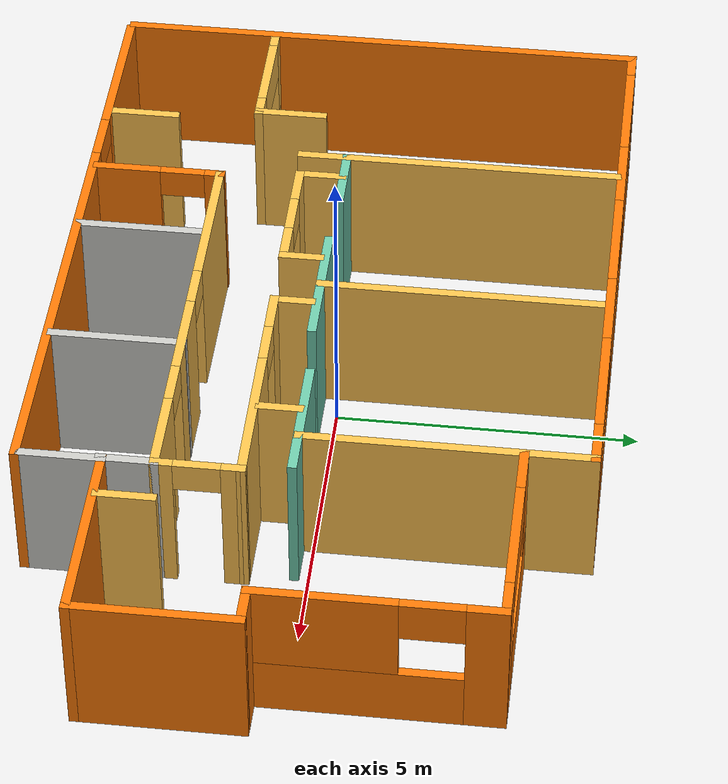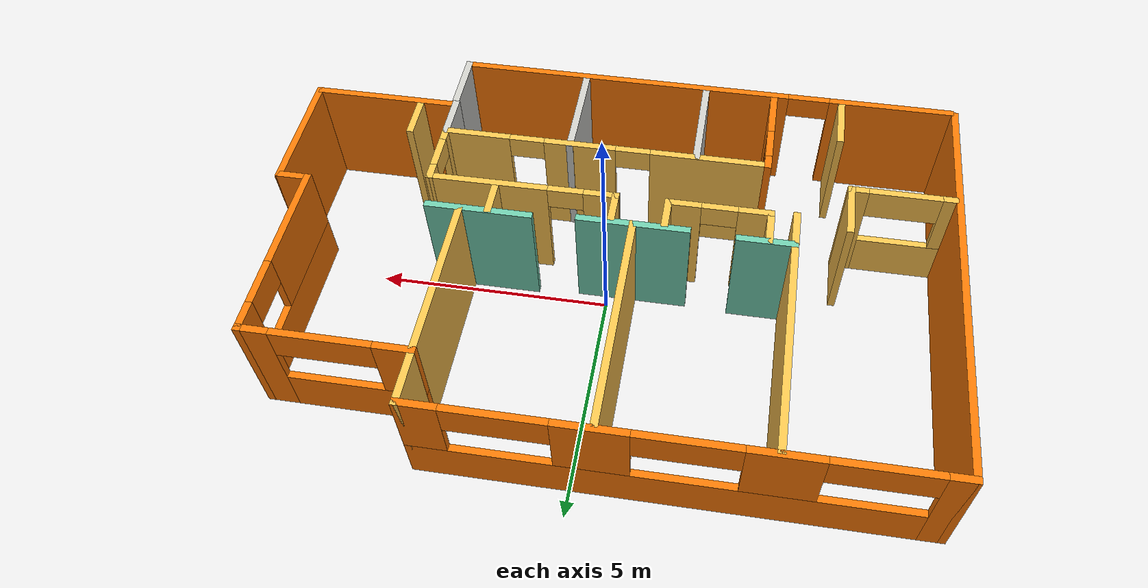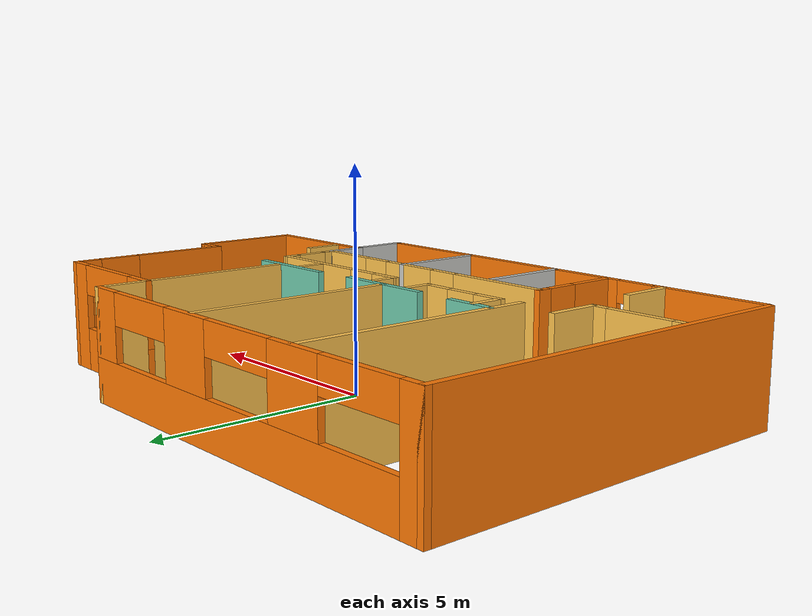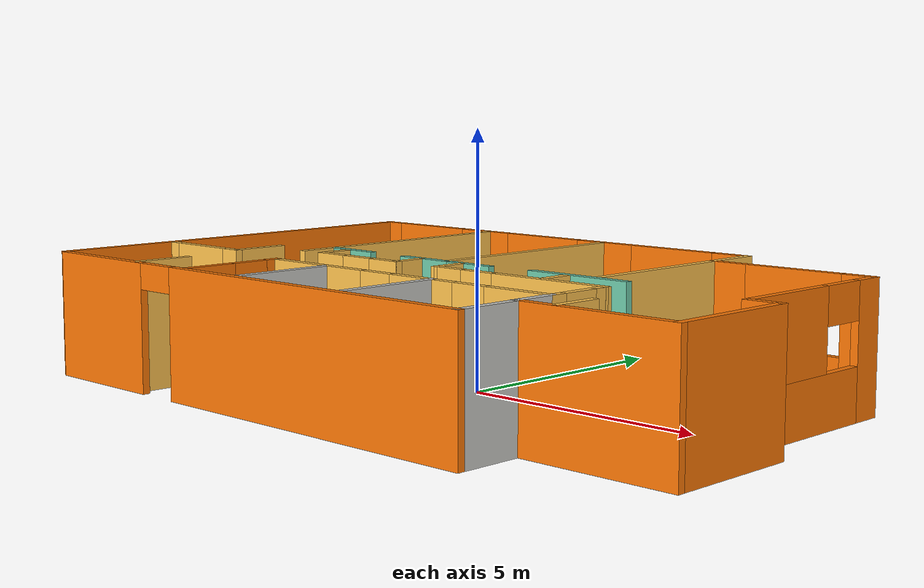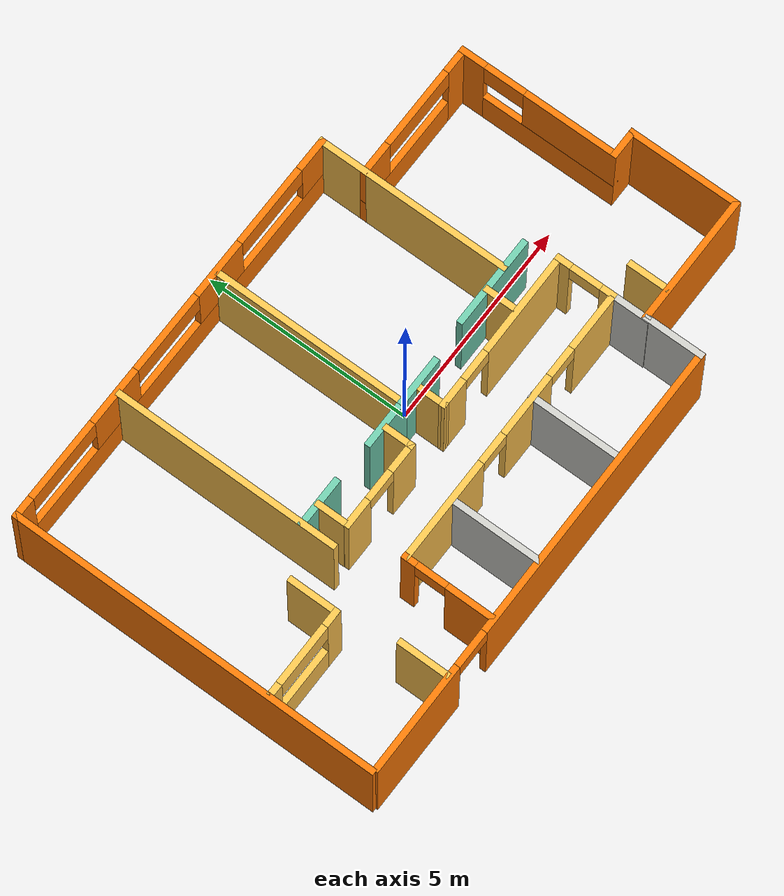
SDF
<?xml version='1.0'?>
<sdf version='1.6'>
  <model name='APT916'>
    <pose frame=''>-0.036 -0.065 0 0 -0 0</pose>
    <link name='Wall_14'>
      <collision name='Wall_14_Collision'>
        <geometry>
          <box>
            <size>9 0.15 2.5</size>
          </box>
        </geometry>
        <pose frame=''>0 0 1.25 0 -0 0</pose>
      </collision>
      <visual name='Wall_14_Visual'>
        <pose frame=''>0 0 1.25 0 -0 0</pose>
        <geometry>
          <box>
            <size>9 0.15 2.5</size>
          </box>
        </geometry>
        <material>
          <script>
            <uri>file://media/materials/scripts/gazebo.material</uri>
            <name>Gazebo/Grey</name>
          </script>
          <ambient>0.996078 0.47451 0.0196078 1</ambient>
        </material>
        <meta>
          <layer>0</layer>
        </meta>
      </visual>
      <pose frame=''>-7.025 0.025 0 0 0 -1.5708</pose>
    </link>
    <link name='Wall_16'>
      <collision name='Wall_16_Collision'>
        <geometry>
          <box>
            <size>5.5 0.15 2.5</size>
          </box>
        </geometry>
        <pose frame=''>0 0 1.25 0 -0 0</pose>
      </collision>
      <visual name='Wall_16_Visual'>
        <pose frame=''>0 0 1.25 0 -0 0</pose>
        <geometry>
          <box>
            <size>5.5 0.15 2.5</size>
          </box>
        </geometry>
        <material>
          <script>
            <uri>file://media/materials/scripts/gazebo.material</uri>
            <name>Gazebo/Grey</name>
          </script>
          <ambient>1 0.764706 0.305882 1</ambient>
        </material>
        <meta>
          <layer>0</layer>
        </meta>
      </visual>
      <pose frame=''>-3.747 1.703 0 0 0 -1.5708</pose>
    </link>
    <link name='Wall_18'>
      <collision name='Wall_18_Collision'>
        <geometry>
          <box>
            <size>1.25 0.15 2.5</size>
          </box>
        </geometry>
        <pose frame=''>0 0 1.25 0 -0 0</pose>
      </collision>
      <visual name='Wall_18_Visual'>
        <pose frame=''>0 0 1.25 0 -0 0</pose>
        <geometry>
          <box>
            <size>1.25 0.15 2.5</size>
          </box>
        </geometry>
        <material>
          <script>
            <uri>file://media/materials/scripts/gazebo.material</uri>
            <name>Gazebo/Grey</name>
          </script>
          <ambient>1 0.764706 0.305882 1</ambient>
        </material>
        <meta>
          <layer>0</layer>
        </meta>
      </visual>
      <pose frame=''>-4.824 -1.31 0 0 0 -1.5708</pose>
    </link>
    <link name='Wall_19'>
      <pose frame=''>-5.874 -1.86 0 0 -0 3.14159</pose>
      <visual name='Wall_19_Visual_0'>
        <pose frame=''>-0.90386 0 1.25 0 -0 0</pose>
        <geometry>
          <box>
            <size>0.442281 0.15 2.5</size>
          </box>
        </geometry>
        <material>
          <script>
            <uri>file://media/materials/scripts/gazebo.material</uri>
            <name>Gazebo/Grey</name>
          </script>
          <ambient>1 0.764706 0.305882 1</ambient>
        </material>
        <meta>
          <layer>0</layer>
        </meta>
      </visual>
      <collision name='Wall_19_Collision_0'>
        <geometry>
          <box>
            <size>0.442281 0.15 2.5</size>
          </box>
        </geometry>
        <pose frame=''>-0.90386 0 1.25 0 -0 0</pose>
      </collision>
      <visual name='Wall_19_Visual_1'>
        <pose frame=''>0.22114 0 0.5 0 -0 0</pose>
        <geometry>
          <box>
            <size>1.80772 0.15 1</size>
          </box>
        </geometry>
        <material>
          <script>
            <uri>file://media/materials/scripts/gazebo.material</uri>
            <name>Gazebo/Grey</name>
          </script>
          <ambient>1 0.764706 0.305882 1</ambient>
        </material>
        <meta>
          <layer>0</layer>
        </meta>
      </visual>
      <collision name='Wall_19_Collision_1'>
        <geometry>
          <box>
            <size>1.80772 0.15 1</size>
          </box>
        </geometry>
        <pose frame=''>0.22114 0 0.5 0 -0 0</pose>
      </collision>
      <visual name='Wall_19_Visual_2'>
        <pose frame=''>0.97114 0 1.75 0 -0 0</pose>
        <geometry>
          <box>
            <size>0.307719 0.15 1.5</size>
          </box>
        </geometry>
        <material>
          <script>
            <uri>file://media/materials/scripts/gazebo.material</uri>
            <name>Gazebo/Grey</name>
          </script>
          <ambient>1 0.764706 0.305882 1</ambient>
        </material>
        <meta>
          <layer>0</layer>
        </meta>
      </visual>
      <collision name='Wall_19_Collision_2'>
        <geometry>
          <box>
            <size>0.307719 0.15 1.5</size>
          </box>
        </geometry>
        <pose frame=''>0.97114 0 1.75 0 -0 0</pose>
      </collision>
      <visual name='Wall_19_Visual_3'>
        <pose frame=''>0.067281 0 2.15 0 -0 0</pose>
        <geometry>
          <box>
            <size>1.5 0.15 0.7</size>
          </box>
        </geometry>
        <material>
          <script>
            <uri>file://media/materials/scripts/gazebo.material</uri>
            <name>Gazebo/Grey</name>
          </script>
          <ambient>1 0.764706 0.305882 1</ambient>
        </material>
        <meta>
          <layer>0</layer>
        </meta>
      </visual>
      <collision name='Wall_19_Collision_3'>
        <geometry>
          <box>
            <size>1.5 0.15 0.7</size>
          </box>
        </geometry>
        <pose frame=''>0.067281 0 2.15 0 -0 0</pose>
      </collision>
    </link>
    <link name='Wall_21'>
      <collision name='Wall_21_Collision'>
        <geometry>
          <box>
            <size>4.75 0.15 2.5</size>
          </box>
        </geometry>
        <pose frame=''>0 0 1.25 0 -0 0</pose>
      </collision>
      <visual name='Wall_21_Visual'>
        <pose frame=''>0 0 1.25 0 -0 0</pose>
        <geometry>
          <box>
            <size>4.75 0.15 2.5</size>
          </box>
        </geometry>
        <material>
          <script>
            <uri>file://media/materials/scripts/gazebo.material</uri>
            <name>Gazebo/Grey</name>
          </script>
          <ambient>1 0.764706 0.305882 1</ambient>
        </material>
        <meta>
          <layer>0</layer>
        </meta>
      </visual>
      <pose frame=''>-0.486 2.047 0 0 0 -1.5708</pose>
    </link>
    <link name='Wall_23'>
      <collision name='Wall_23_Collision'>
        <geometry>
          <box>
            <size>1.25 0.15 2.5</size>
          </box>
        </geometry>
        <pose frame=''>0 0 1.25 0 -0 0</pose>
      </collision>
      <visual name='Wall_23_Visual'>
        <pose frame=''>0 0 1.25 0 -0 0</pose>
        <geometry>
          <box>
            <size>1.25 0.15 2.5</size>
          </box>
        </geometry>
        <material>
          <script>
            <uri>file://media/materials/scripts/gazebo.material</uri>
            <name>Gazebo/Grey</name>
          </script>
          <ambient>0.435294 0.796078 0.67451 1</ambient>
        </material>
        <meta>
          <layer>0</layer>
        </meta>
      </visual>
      <pose frame=''>-3.19 -0.206 0 0 -0 3.14159</pose>
    </link>
    <link name='Wall_3'>
      <pose frame=''>6.425 1.425 0 0 0 -1.5708</pose>
      <visual name='Wall_3_Visual_0'>
        <pose frame=''>-1.67037 0 1.25 0 -0 0</pose>
        <geometry>
          <box>
            <size>0.659259 0.15 2.5</size>
          </box>
        </geometry>
        <material>
          <script>
            <uri>file://media/materials/scripts/gazebo.material</uri>
            <name>Gazebo/Grey</name>
          </script>
          <ambient>0.996078 0.47451 0.0196078 1</ambient>
        </material>
        <meta>
          <layer>0</layer>
        </meta>
      </visual>
      <collision name='Wall_3_Collision_0'>
        <geometry>
          <box>
            <size>0.659259 0.15 2.5</size>
          </box>
        </geometry>
        <pose frame=''>-1.67037 0 1.25 0 -0 0</pose>
      </collision>
      <visual name='Wall_3_Visual_1'>
        <pose frame=''>0.329629 0 0.5 0 -0 0</pose>
        <geometry>
          <box>
            <size>3.34074 0.15 1</size>
          </box>
        </geometry>
        <material>
          <script>
            <uri>file://media/materials/scripts/gazebo.material</uri>
            <name>Gazebo/Grey</name>
          </script>
          <ambient>0.996078 0.47451 0.0196078 1</ambient>
        </material>
        <meta>
          <layer>0</layer>
        </meta>
      </visual>
      <collision name='Wall_3_Collision_1'>
        <geometry>
          <box>
            <size>3.34074 0.15 1</size>
          </box>
        </geometry>
        <pose frame=''>0.329629 0 0.5 0 -0 0</pose>
      </collision>
      <visual name='Wall_3_Visual_2'>
        <pose frame=''>0.829629 0 1.75 0 -0 0</pose>
        <geometry>
          <box>
            <size>2.34074 0.15 1.5</size>
          </box>
        </geometry>
        <material>
          <script>
            <uri>file://media/materials/scripts/gazebo.material</uri>
            <name>Gazebo/Grey</name>
          </script>
          <ambient>0.996078 0.47451 0.0196078 1</ambient>
        </material>
        <meta>
          <layer>0</layer>
        </meta>
      </visual>
      <collision name='Wall_3_Collision_2'>
        <geometry>
          <box>
            <size>2.34074 0.15 1.5</size>
          </box>
        </geometry>
        <pose frame=''>0.829629 0 1.75 0 -0 0</pose>
      </collision>
      <visual name='Wall_3_Visual_3'>
        <pose frame=''>-0.840741 0 2.15 0 -0 0</pose>
        <geometry>
          <box>
            <size>1 0.15 0.7</size>
          </box>
        </geometry>
        <material>
          <script>
            <uri>file://media/materials/scripts/gazebo.material</uri>
            <name>Gazebo/Grey</name>
          </script>
          <ambient>0.996078 0.47451 0.0196078 1</ambient>
        </material>
        <meta>
          <layer>0</layer>
        </meta>
      </visual>
      <collision name='Wall_3_Collision_3'>
        <geometry>
          <box>
            <size>1 0.15 0.7</size>
          </box>
        </geometry>
        <pose frame=''>-0.840741 0 2.15 0 -0 0</pose>
      </collision>
    </link>
    <link name='Wall_30'>
      <collision name='Wall_30_Collision'>
        <geometry>
          <box>
            <size>0.75 0.15 2.5</size>
          </box>
        </geometry>
        <pose frame=''>0 0 1.25 0 -0 0</pose>
      </collision>
      <visual name='Wall_30_Visual'>
        <pose frame=''>0 0 1.25 0 -0 0</pose>
        <geometry>
          <box>
            <size>0.75 0.15 2.5</size>
          </box>
        </geometry>
        <material>
          <script>
            <uri>file://media/materials/scripts/gazebo.material</uri>
            <name>Gazebo/Grey</name>
          </script>
          <ambient>1 0.764706 0.305882 1</ambient>
        </material>
        <meta>
          <layer>0</layer>
        </meta>
      </visual>
      <pose frame=''>-3.229 -0.53 0 0 -0 1.5708</pose>
    </link>
    <link name='Wall_32'>
      <pose frame=''>-2.171 -0.947 0 0 -0 3.14159</pose>
      <visual name='Wall_32_Visual_0'>
        <pose frame=''>-0.744745 0 1.25 0 -0 0</pose>
        <geometry>
          <box>
            <size>0.76051 0.15 2.5</size>
          </box>
        </geometry>
        <material>
          <script>
            <uri>file://media/materials/scripts/gazebo.material</uri>
            <name>Gazebo/Grey</name>
          </script>
          <ambient>1 0.764706 0.305882 1</ambient>
        </material>
        <meta>
          <layer>0</layer>
        </meta>
      </visual>
      <collision name='Wall_32_Collision_0'>
        <geometry>
          <box>
            <size>0.76051 0.15 2.5</size>
          </box>
        </geometry>
        <pose frame=''>-0.744745 0 1.25 0 -0 0</pose>
      </collision>
      <visual name='Wall_32_Visual_1'>
        <pose frame=''>0.755255 0 1.25 0 -0 0</pose>
        <geometry>
          <box>
            <size>0.73949 0.15 2.5</size>
          </box>
        </geometry>
        <material>
          <script>
            <uri>file://media/materials/scripts/gazebo.material</uri>
            <name>Gazebo/Grey</name>
          </script>
          <ambient>1 0.764706 0.305882 1</ambient>
        </material>
        <meta>
          <layer>0</layer>
        </meta>
      </visual>
      <collision name='Wall_32_Collision_1'>
        <geometry>
          <box>
            <size>0.73949 0.15 2.5</size>
          </box>
        </geometry>
        <pose frame=''>0.755255 0 1.25 0 -0 0</pose>
      </collision>
      <visual name='Wall_32_Visual_2'>
        <pose frame=''>0.01051 0 2.25 0 -0 0</pose>
        <geometry>
          <box>
            <size>0.75 0.15 0.5</size>
          </box>
        </geometry>
        <material>
          <script>
            <uri>file://media/materials/scripts/gazebo.material</uri>
            <name>Gazebo/Grey</name>
          </script>
          <ambient>1 0.764706 0.305882 1</ambient>
        </material>
        <meta>
          <layer>0</layer>
        </meta>
      </visual>
      <collision name='Wall_32_Collision_2'>
        <geometry>
          <box>
            <size>0.75 0.15 0.5</size>
          </box>
        </geometry>
        <pose frame=''>0.01051 0 2.25 0 -0 0</pose>
      </collision>
    </link>
    <link name='Wall_35'>
      <collision name='Wall_35_Collision'>
        <geometry>
          <box>
            <size>1.25 0.15 2.5</size>
          </box>
        </geometry>
        <pose frame=''>0 0 1.25 0 -0 0</pose>
      </collision>
      <visual name='Wall_35_Visual'>
        <pose frame=''>0 0 1.25 0 -0 0</pose>
        <geometry>
          <box>
            <size>1.25 0.15 2.5</size>
          </box>
        </geometry>
        <material>
          <script>
            <uri>file://media/materials/scripts/gazebo.material</uri>
            <name>Gazebo/Grey</name>
          </script>
          <ambient>0.435294 0.796078 0.67451 1</ambient>
        </material>
        <meta>
          <layer>0</layer>
        </meta>
      </visual>
      <pose frame=''>-1.036 -0.253 0 0 -0 3.14159</pose>
    </link>
    <link name='Wall_4'>
      <collision name='Wall_4_Collision'>
        <geometry>
          <box>
            <size>0.75 0.15 2.5</size>
          </box>
        </geometry>
        <pose frame=''>0 0 1.25 0 -0 0</pose>
      </collision>
      <visual name='Wall_4_Visual'>
        <pose frame=''>0 0 1.25 0 -0 0</pose>
        <geometry>
          <box>
            <size>0.75 0.15 2.5</size>
          </box>
        </geometry>
        <material>
          <script>
            <uri>file://media/materials/scripts/gazebo.material</uri>
            <name>Gazebo/Grey</name>
          </script>
          <ambient>0.996078 0.47451 0.0196078 1</ambient>
        </material>
        <meta>
          <layer>0</layer>
        </meta>
      </visual>
      <pose frame=''>6.725 -0.5 0 0 -0 0</pose>
    </link>
    <link name='Wall_42'>
      <collision name='Wall_42_Collision'>
        <geometry>
          <box>
            <size>1.25 0.15 2.5</size>
          </box>
        </geometry>
        <pose frame=''>0 0 1.25 0 -0 0</pose>
      </collision>
      <visual name='Wall_42_Visual'>
        <pose frame=''>0 0 1.25 0 -0 0</pose>
        <geometry>
          <box>
            <size>1.25 0.15 2.5</size>
          </box>
        </geometry>
        <material>
          <script>
            <uri>file://media/materials/scripts/gazebo.material</uri>
            <name>Gazebo/Grey</name>
          </script>
          <ambient>0.435294 0.796078 0.67451 1</ambient>
        </material>
        <meta>
          <layer>0</layer>
        </meta>
      </visual>
      <pose frame=''>0.064 -0.253 0 0 -0 3.14159</pose>
    </link>
    <link name='Wall_44'>
      <collision name='Wall_44_Collision'>
        <geometry>
          <box>
            <size>0.75 0.15 2.5</size>
          </box>
        </geometry>
        <pose frame=''>0 0 1.25 0 -0 0</pose>
      </collision>
      <visual name='Wall_44_Visual'>
        <pose frame=''>0 0 1.25 0 -0 0</pose>
        <geometry>
          <box>
            <size>0.75 0.15 2.5</size>
          </box>
        </geometry>
        <material>
          <script>
            <uri>file://media/materials/scripts/gazebo.material</uri>
            <name>Gazebo/Grey</name>
          </script>
          <ambient>1 0.764706 0.305882 1</ambient>
        </material>
        <meta>
          <layer>0</layer>
        </meta>
      </visual>
      <pose frame=''>-0.028 -0.652 0 0 0 -1.5708</pose>
    </link>
    <link name='Wall_5'>
      <collision name='Wall_5_Collision'>
        <geometry>
          <box>
            <size>2.75 0.15 2.5</size>
          </box>
        </geometry>
        <pose frame=''>0 0 1.25 0 -0 0</pose>
      </collision>
      <visual name='Wall_5_Visual'>
        <pose frame=''>0 0 1.25 0 -0 0</pose>
        <geometry>
          <box>
            <size>2.75 0.15 2.5</size>
          </box>
        </geometry>
        <material>
          <script>
            <uri>file://media/materials/scripts/gazebo.material</uri>
            <name>Gazebo/Grey</name>
          </script>
          <ambient>0.996078 0.47451 0.0196078 1</ambient>
        </material>
        <meta>
          <layer>0</layer>
        </meta>
      </visual>
      <pose frame=''>7.025 -1.8 0 0 0 -1.5708</pose>
    </link>
    <link name='Wall_51'>
      <collision name='Wall_51_Collision'>
        <geometry>
          <box>
            <size>2.25 0.15 2.5</size>
          </box>
        </geometry>
        <pose frame=''>0 0 1.25 0 -0 0</pose>
      </collision>
      <visual name='Wall_51_Visual'>
        <pose frame=''>0 0 1.25 0 -0 0</pose>
        <geometry>
          <box>
            <size>2.25 0.15 2.5</size>
          </box>
        </geometry>
        <material>
          <script>
            <uri>file://media/materials/scripts/gazebo.material</uri>
            <name>Gazebo/Grey</name>
          </script>
          <ambient>0.435294 0.796078 0.67451 1</ambient>
        </material>
        <meta>
          <layer>0</layer>
        </meta>
      </visual>
      <pose frame=''>2.684 -0.162 0 0 -0 0</pose>
    </link>
    <link name='Wall_53'>
      <pose frame=''>-1.975 4.45 0 0 -0 0</pose>
      <visual name='Wall_53_Visual_0'>
        <pose frame=''>-4.85383 0 1.25 0 -0 0</pose>
        <geometry>
          <box>
            <size>0.542348 0.15 2.5</size>
          </box>
        </geometry>
        <material>
          <script>
            <uri>file://media/materials/scripts/gazebo.material</uri>
            <name>Gazebo/Grey</name>
          </script>
          <ambient>0.996078 0.47451 0.0196078 1</ambient>
        </material>
        <meta>
          <layer>0</layer>
        </meta>
      </visual>
      <collision name='Wall_53_Collision_0'>
        <geometry>
          <box>
            <size>0.542348 0.15 2.5</size>
          </box>
        </geometry>
        <pose frame=''>-4.85383 0 1.25 0 -0 0</pose>
      </collision>
      <visual name='Wall_53_Visual_1'>
        <pose frame=''>0.271174 0 0.5 0 -0 0</pose>
        <geometry>
          <box>
            <size>9.70765 0.15 1</size>
          </box>
        </geometry>
        <material>
          <script>
            <uri>file://media/materials/scripts/gazebo.material</uri>
            <name>Gazebo/Grey</name>
          </script>
          <ambient>0.996078 0.47451 0.0196078 1</ambient>
        </material>
        <meta>
          <layer>0</layer>
        </meta>
      </visual>
      <collision name='Wall_53_Collision_1'>
        <geometry>
          <box>
            <size>9.70765 0.15 1</size>
          </box>
        </geometry>
        <pose frame=''>0.271174 0 0.5 0 -0 0</pose>
      </collision>
      <visual name='Wall_53_Visual_2'>
        <pose frame=''>-1.87284 0 1.75 0 -0 0</pose>
        <geometry>
          <box>
            <size>1.41962 0.15 1.5</size>
          </box>
        </geometry>
        <material>
          <script>
            <uri>file://media/materials/scripts/gazebo.material</uri>
            <name>Gazebo/Grey</name>
          </script>
          <ambient>0.996078 0.47451 0.0196078 1</ambient>
        </material>
        <meta>
          <layer>0</layer>
        </meta>
      </visual>
      <collision name='Wall_53_Collision_2'>
        <geometry>
          <box>
            <size>1.41962 0.15 1.5</size>
          </box>
        </geometry>
        <pose frame=''>-1.87284 0 1.75 0 -0 0</pose>
      </collision>
      <visual name='Wall_53_Visual_3'>
        <pose frame=''>1.55835 0 1.75 0 -0 0</pose>
        <geometry>
          <box>
            <size>1.44277 0.15 1.5</size>
          </box>
        </geometry>
        <material>
          <script>
            <uri>file://media/materials/scripts/gazebo.material</uri>
            <name>Gazebo/Grey</name>
          </script>
          <ambient>0.996078 0.47451 0.0196078 1</ambient>
        </material>
        <meta>
          <layer>0</layer>
        </meta>
      </visual>
      <collision name='Wall_53_Collision_3'>
        <geometry>
          <box>
            <size>1.44277 0.15 1.5</size>
          </box>
        </geometry>
        <pose frame=''>1.55835 0 1.75 0 -0 0</pose>
      </collision>
      <visual name='Wall_53_Visual_4'>
        <pose frame=''>4.70237 0 1.75 0 -0 0</pose>
        <geometry>
          <box>
            <size>0.845266 0.15 1.5</size>
          </box>
        </geometry>
        <material>
          <script>
            <uri>file://media/materials/scripts/gazebo.material</uri>
            <name>Gazebo/Grey</name>
          </script>
          <ambient>0.996078 0.47451 0.0196078 1</ambient>
        </material>
        <meta>
          <layer>0</layer>
        </meta>
      </visual>
      <collision name='Wall_53_Collision_4'>
        <geometry>
          <box>
            <size>0.845266 0.15 1.5</size>
          </box>
        </geometry>
        <pose frame=''>4.70237 0 1.75 0 -0 0</pose>
      </collision>
      <visual name='Wall_53_Visual_5'>
        <pose frame=''>-3.58265 0 2.15 0 -0 0</pose>
        <geometry>
          <box>
            <size>2 0.15 0.7</size>
          </box>
        </geometry>
        <material>
          <script>
            <uri>file://media/materials/scripts/gazebo.material</uri>
            <name>Gazebo/Grey</name>
          </script>
          <ambient>0.996078 0.47451 0.0196078 1</ambient>
        </material>
        <meta>
          <layer>0</layer>
        </meta>
      </visual>
      <collision name='Wall_53_Collision_5'>
        <geometry>
          <box>
            <size>2 0.15 0.7</size>
          </box>
        </geometry>
        <pose frame=''>-3.58265 0 2.15 0 -0 0</pose>
      </collision>
      <visual name='Wall_53_Visual_6'>
        <pose frame=''>-0.163033 0 2.15 0 -0 0</pose>
        <geometry>
          <box>
            <size>2 0.15 0.7</size>
          </box>
        </geometry>
        <material>
          <script>
            <uri>file://media/materials/scripts/gazebo.material</uri>
            <name>Gazebo/Grey</name>
          </script>
          <ambient>0.996078 0.47451 0.0196078 1</ambient>
        </material>
        <meta>
          <layer>0</layer>
        </meta>
      </visual>
      <collision name='Wall_53_Collision_6'>
        <geometry>
          <box>
            <size>2 0.15 0.7</size>
          </box>
        </geometry>
        <pose frame=''>-0.163033 0 2.15 0 -0 0</pose>
      </collision>
      <visual name='Wall_53_Visual_7'>
        <pose frame=''>3.27973 0 2.15 0 -0 0</pose>
        <geometry>
          <box>
            <size>2 0.15 0.7</size>
          </box>
        </geometry>
        <material>
          <script>
            <uri>file://media/materials/scripts/gazebo.material</uri>
            <name>Gazebo/Grey</name>
          </script>
          <ambient>0.996078 0.47451 0.0196078 1</ambient>
        </material>
        <meta>
          <layer>0</layer>
        </meta>
      </visual>
      <collision name='Wall_53_Collision_7'>
        <geometry>
          <box>
            <size>2 0.15 0.7</size>
          </box>
        </geometry>
        <pose frame=''>3.27973 0 2.15 0 -0 0</pose>
      </collision>
    </link>
    <link name='Wall_54'>
      <collision name='Wall_54_Collision'>
        <geometry>
          <box>
            <size>4.75 0.15 2.5</size>
          </box>
        </geometry>
        <pose frame=''>0 0 1.25 0 -0 0</pose>
      </collision>
      <visual name='Wall_54_Visual'>
        <pose frame=''>0 0 1.25 0 -0 0</pose>
        <geometry>
          <box>
            <size>4.75 0.15 2.5</size>
          </box>
        </geometry>
        <material>
          <script>
            <uri>file://media/materials/scripts/gazebo.material</uri>
            <name>Gazebo/Grey</name>
          </script>
          <ambient>1 0.764706 0.305882 1</ambient>
        </material>
        <meta>
          <layer>0</layer>
        </meta>
      </visual>
      <pose frame=''>3.075 2.15 0 0 0 -1.5708</pose>
    </link>
    <link name='Wall_56'>
      <pose frame=''>4.75 3.35 0 0 -0 3.14159</pose>
      <visual name='Wall_56_Visual_0'>
        <pose frame=''>-1.41677 0 1.25 0 -0 0</pose>
        <geometry>
          <box>
            <size>0.666459 0.15 2.5</size>
          </box>
        </geometry>
        <material>
          <script>
            <uri>file://media/materials/scripts/gazebo.material</uri>
            <name>Gazebo/Grey</name>
          </script>
          <ambient>0.996078 0.47451 0.0196078 1</ambient>
        </material>
        <meta>
          <layer>0</layer>
        </meta>
      </visual>
      <collision name='Wall_56_Collision_0'>
        <geometry>
          <box>
            <size>0.666459 0.15 2.5</size>
          </box>
        </geometry>
        <pose frame=''>-1.41677 0 1.25 0 -0 0</pose>
      </collision>
      <visual name='Wall_56_Visual_1'>
        <pose frame=''>0.333229 0 0.5 0 -0 0</pose>
        <geometry>
          <box>
            <size>2.83354 0.15 1</size>
          </box>
        </geometry>
        <material>
          <script>
            <uri>file://media/materials/scripts/gazebo.material</uri>
            <name>Gazebo/Grey</name>
          </script>
          <ambient>0.996078 0.47451 0.0196078 1</ambient>
        </material>
        <meta>
          <layer>0</layer>
        </meta>
      </visual>
      <collision name='Wall_56_Collision_1'>
        <geometry>
          <box>
            <size>2.83354 0.15 1</size>
          </box>
        </geometry>
        <pose frame=''>0.333229 0 0.5 0 -0 0</pose>
      </collision>
      <visual name='Wall_56_Visual_2'>
        <pose frame=''>1.33323 0 1.75 0 -0 0</pose>
        <geometry>
          <box>
            <size>0.833541 0.15 1.5</size>
          </box>
        </geometry>
        <material>
          <script>
            <uri>file://media/materials/scripts/gazebo.material</uri>
            <name>Gazebo/Grey</name>
          </script>
          <ambient>0.996078 0.47451 0.0196078 1</ambient>
        </material>
        <meta>
          <layer>0</layer>
        </meta>
      </visual>
      <collision name='Wall_56_Collision_2'>
        <geometry>
          <box>
            <size>0.833541 0.15 1.5</size>
          </box>
        </geometry>
        <pose frame=''>1.33323 0 1.75 0 -0 0</pose>
      </collision>
      <visual name='Wall_56_Visual_3'>
        <pose frame=''>-0.083541 0 2.15 0 -0 0</pose>
        <geometry>
          <box>
            <size>2 0.15 0.7</size>
          </box>
        </geometry>
        <material>
          <script>
            <uri>file://media/materials/scripts/gazebo.material</uri>
            <name>Gazebo/Grey</name>
          </script>
          <ambient>0.996078 0.47451 0.0196078 1</ambient>
        </material>
        <meta>
          <layer>0</layer>
        </meta>
      </visual>
      <collision name='Wall_56_Collision_3'>
        <geometry>
          <box>
            <size>2 0.15 0.7</size>
          </box>
        </geometry>
        <pose frame=''>-0.083541 0 2.15 0 -0 0</pose>
      </collision>
    </link>
    <link name='Wall_58'>
      <collision name='Wall_58_Collision'>
        <geometry>
          <box>
            <size>0.8 0.15 2.5</size>
          </box>
        </geometry>
        <pose frame=''>0 0 1.25 0 -0 0</pose>
      </collision>
      <visual name='Wall_58_Visual'>
        <pose frame=''>0 0 1.25 0 -0 0</pose>
        <geometry>
          <box>
            <size>0.8 0.15 2.5</size>
          </box>
        </geometry>
        <material>
          <script>
            <uri>file://media/materials/scripts/gazebo.material</uri>
            <name>Gazebo/Grey</name>
          </script>
          <ambient>1 0.764706 0.305882 1</ambient>
        </material>
        <meta>
          <layer>0</layer>
        </meta>
      </visual>
      <pose frame=''>2.486 -0.51 0 0 0 -1.5708</pose>
    </link>
    <link name='Wall_6'>
      <collision name='Wall_6_Collision'>
        <geometry>
          <box>
            <size>3.25 0.15 2.5</size>
          </box>
        </geometry>
        <pose frame=''>0 0 1.25 0 -0 0</pose>
      </collision>
      <visual name='Wall_6_Visual'>
        <pose frame=''>0 0 1.25 0 -0 0</pose>
        <geometry>
          <box>
            <size>3.25 0.15 2.5</size>
          </box>
        </geometry>
        <material>
          <script>
            <uri>file://media/materials/scripts/gazebo.material</uri>
            <name>Gazebo/Grey</name>
          </script>
          <ambient>0.996078 0.47451 0.0196078 1</ambient>
        </material>
        <meta>
          <layer>0</layer>
        </meta>
      </visual>
      <pose frame=''>5.475 -3.1 0 0 -0 3.14159</pose>
    </link>
    <link name='Wall_60'>
      <collision name='Wall_60_Collision'>
        <geometry>
          <box>
            <size>1.25 0.15 2.5</size>
          </box>
        </geometry>
        <pose frame=''>0 0 1.25 0 -0 0</pose>
      </collision>
      <visual name='Wall_60_Visual'>
        <pose frame=''>0 0 1.25 0 -0 0</pose>
        <geometry>
          <box>
            <size>1.25 0.15 2.5</size>
          </box>
        </geometry>
        <material>
          <script>
            <uri>file://media/materials/scripts/gazebo.material</uri>
            <name>Gazebo/Grey</name>
          </script>
          <ambient>1 0.764706 0.305882 1</ambient>
        </material>
        <meta>
          <layer>0</layer>
        </meta>
      </visual>
      <pose frame=''>-4.563 -3.832 0 0 -0 1.5708</pose>
    </link>
    <link name='Wall_63'>
      <pose frame=''>0.371 -2.285 0 0 -0 0</pose>
      <visual name='Wall_63_Visual_0'>
        <pose frame=''>-2.21806 0 1.25 0 -0 0</pose>
        <geometry>
          <box>
            <size>2.56389 0.15 2.5</size>
          </box>
        </geometry>
        <material>
          <script>
            <uri>file://media/materials/scripts/gazebo.material</uri>
            <name>Gazebo/Grey</name>
          </script>
          <ambient>1 0.764706 0.305882 1</ambient>
        </material>
        <meta>
          <layer>0</layer>
        </meta>
      </visual>
      <collision name='Wall_63_Collision_0'>
        <geometry>
          <box>
            <size>2.56389 0.15 2.5</size>
          </box>
        </geometry>
        <pose frame=''>-2.21806 0 1.25 0 -0 0</pose>
      </collision>
      <visual name='Wall_63_Visual_1'>
        <pose frame=''>0.590236 0 1.25 0 -0 0</pose>
        <geometry>
          <box>
            <size>1.5527 0.15 2.5</size>
          </box>
        </geometry>
        <material>
          <script>
            <uri>file://media/materials/scripts/gazebo.material</uri>
            <name>Gazebo/Grey</name>
          </script>
          <ambient>1 0.764706 0.305882 1</ambient>
        </material>
        <meta>
          <layer>0</layer>
        </meta>
      </visual>
      <collision name='Wall_63_Collision_1'>
        <geometry>
          <box>
            <size>1.5527 0.15 2.5</size>
          </box>
        </geometry>
        <pose frame=''>0.590236 0 1.25 0 -0 0</pose>
      </collision>
      <visual name='Wall_63_Visual_2'>
        <pose frame=''>2.80829 0 1.25 0 -0 0</pose>
        <geometry>
          <box>
            <size>1.38342 0.15 2.5</size>
          </box>
        </geometry>
        <material>
          <script>
            <uri>file://media/materials/scripts/gazebo.material</uri>
            <name>Gazebo/Grey</name>
          </script>
          <ambient>1 0.764706 0.305882 1</ambient>
        </material>
        <meta>
          <layer>0</layer>
        </meta>
      </visual>
      <collision name='Wall_63_Collision_2'>
        <geometry>
          <box>
            <size>1.38342 0.15 2.5</size>
          </box>
        </geometry>
        <pose frame=''>2.80829 0 1.25 0 -0 0</pose>
      </collision>
      <visual name='Wall_63_Visual_3'>
        <pose frame=''>-0.561112 0 2.25 0 -0 0</pose>
        <geometry>
          <box>
            <size>0.75 0.15 0.5</size>
          </box>
        </geometry>
        <material>
          <script>
            <uri>file://media/materials/scripts/gazebo.material</uri>
            <name>Gazebo/Grey</name>
          </script>
          <ambient>1 0.764706 0.305882 1</ambient>
        </material>
        <meta>
          <layer>0</layer>
        </meta>
      </visual>
      <collision name='Wall_63_Collision_3'>
        <geometry>
          <box>
            <size>0.75 0.15 0.5</size>
          </box>
        </geometry>
        <pose frame=''>-0.561112 0 2.25 0 -0 0</pose>
      </collision>
      <visual name='Wall_63_Visual_4'>
        <pose frame=''>1.74158 0 2.25 0 -0 0</pose>
        <geometry>
          <box>
            <size>0.75 0.15 0.5</size>
          </box>
        </geometry>
        <material>
          <script>
            <uri>file://media/materials/scripts/gazebo.material</uri>
            <name>Gazebo/Grey</name>
          </script>
          <ambient>1 0.764706 0.305882 1</ambient>
        </material>
        <meta>
          <layer>0</layer>
        </meta>
      </visual>
      <collision name='Wall_63_Collision_4'>
        <geometry>
          <box>
            <size>0.75 0.15 0.5</size>
          </box>
        </geometry>
        <pose frame=''>1.74158 0 2.25 0 -0 0</pose>
      </collision>
    </link>
    <link name='Wall_66'>
      <pose frame=''>-3.07 -3.324 0 0 -0 1.5708</pose>
      <visual name='Wall_66_Visual_0'>
        <pose frame=''>-0.549177 0 1.25 0 -0 0</pose>
        <geometry>
          <box>
            <size>1.15165 0.15 2.5</size>
          </box>
        </geometry>
        <material>
          <script>
            <uri>file://media/materials/scripts/gazebo.material</uri>
            <name>Gazebo/Grey</name>
          </script>
          <ambient>0.996078 0.47451 0.0196078 1</ambient>
        </material>
        <meta>
          <layer>0</layer>
        </meta>
      </visual>
      <collision name='Wall_66_Collision_0'>
        <geometry>
          <box>
            <size>1.15165 0.15 2.5</size>
          </box>
        </geometry>
        <pose frame=''>-0.549177 0 1.25 0 -0 0</pose>
      </collision>
      <visual name='Wall_66_Visual_1'>
        <pose frame=''>0.950823 0 1.25 0 -0 0</pose>
        <geometry>
          <box>
            <size>0.348354 0.15 2.5</size>
          </box>
        </geometry>
        <material>
          <script>
            <uri>file://media/materials/scripts/gazebo.material</uri>
            <name>Gazebo/Grey</name>
          </script>
          <ambient>0.996078 0.47451 0.0196078 1</ambient>
        </material>
        <meta>
          <layer>0</layer>
        </meta>
      </visual>
      <collision name='Wall_66_Collision_1'>
        <geometry>
          <box>
            <size>0.348354 0.15 2.5</size>
          </box>
        </geometry>
        <pose frame=''>0.950823 0 1.25 0 -0 0</pose>
      </collision>
      <visual name='Wall_66_Visual_2'>
        <pose frame=''>0.401646 0 2.25 0 -0 0</pose>
        <geometry>
          <box>
            <size>0.75 0.15 0.5</size>
          </box>
        </geometry>
        <material>
          <script>
            <uri>file://media/materials/scripts/gazebo.material</uri>
            <name>Gazebo/Grey</name>
          </script>
          <ambient>0.996078 0.47451 0.0196078 1</ambient>
        </material>
        <meta>
          <layer>0</layer>
        </meta>
      </visual>
      <collision name='Wall_66_Collision_2'>
        <geometry>
          <box>
            <size>0.75 0.15 0.5</size>
          </box>
        </geometry>
        <pose frame=''>0.401646 0 2.25 0 -0 0</pose>
      </collision>
    </link>
    <link name='Wall_68'>
      <collision name='Wall_68_Collision'>
        <geometry>
          <box>
            <size>1 0.15 2.5</size>
          </box>
        </geometry>
        <pose frame=''>0 0 1.25 0 -0 0</pose>
      </collision>
      <visual name='Wall_68_Visual'>
        <pose frame=''>0 0 1.25 0 -0 0</pose>
        <geometry>
          <box>
            <size>1 0.15 2.5</size>
          </box>
        </geometry>
        <material>
          <script>
            <uri>file://media/materials/scripts/gazebo.material</uri>
            <name>Gazebo/Grey</name>
          </script>
          <ambient>1 0.764706 0.305882 1</ambient>
        </material>
        <meta>
          <layer>0</layer>
        </meta>
      </visual>
      <pose frame=''>4.676 -2.615 0 0 0 -1.5708</pose>
    </link>
    <link name='Wall_7'>
      <collision name='Wall_7_Collision'>
        <geometry>
          <box>
            <size>1.5 0.15 2.5</size>
          </box>
        </geometry>
        <pose frame=''>0 0 1.25 0 -0 0</pose>
      </collision>
      <visual name='Wall_7_Visual'>
        <pose frame=''>0 0 1.25 0 -0 0</pose>
        <geometry>
          <box>
            <size>1.5 0.15 2.5</size>
          </box>
        </geometry>
        <material>
          <script>
            <uri>file://media/materials/scripts/gazebo.material</uri>
            <name>Gazebo/CeilingTiled</name>
          </script>
          <ambient>1 1 1 1</ambient>
        </material>
        <meta>
          <layer>0</layer>
        </meta>
      </visual>
      <pose frame=''>3.925 -3.775 0 0 0 -1.5708</pose>
    </link>
    <link name='Wall_71'>
      <collision name='Wall_71_Collision'>
        <geometry>
          <box>
            <size>1 0.15 2.5</size>
          </box>
        </geometry>
        <pose frame=''>0 0 1.25 0 -0 0</pose>
      </collision>
      <visual name='Wall_71_Visual'>
        <pose frame=''>0 0 1.25 0 -0 0</pose>
        <geometry>
          <box>
            <size>1 0.15 2.5</size>
          </box>
        </geometry>
        <material>
          <script>
            <uri>file://media/materials/scripts/gazebo.material</uri>
            <name>Gazebo/CeilingTiled</name>
          </script>
          <ambient>1 1 1 1</ambient>
        </material>
        <meta>
          <layer>0</layer>
        </meta>
      </visual>
      <pose frame=''>3.906 -2.705 0 0 0 -1.5708</pose>
    </link>
    <link name='Wall_73'>
      <collision name='Wall_73_Collision'>
        <geometry>
          <box>
            <size>0.75 0.15 2.5</size>
          </box>
        </geometry>
        <pose frame=''>0 0 1.25 0 -0 0</pose>
      </collision>
      <visual name='Wall_73_Visual'>
        <pose frame=''>0 0 1.25 0 -0 0</pose>
        <geometry>
          <box>
            <size>0.75 0.15 2.5</size>
          </box>
        </geometry>
        <material>
          <script>
            <uri>file://media/materials/scripts/gazebo.material</uri>
            <name>Gazebo/Grey</name>
          </script>
          <ambient>1 0.764706 0.305882 1</ambient>
        </material>
        <meta>
          <layer>0</layer>
        </meta>
      </visual>
      <pose frame=''>-1.121 -0.647 0 0 -0 1.5708</pose>
    </link>
    <link name='Wall_77'>
      <pose frame=''>3.906 -1.605 0 0 -0 1.5708</pose>
      <visual name='Wall_77_Visual_0'>
        <pose frame=''>-0.570824 0 1.25 0 -0 0</pose>
        <geometry>
          <box>
            <size>0.358352 0.15 2.5</size>
          </box>
        </geometry>
        <material>
          <script>
            <uri>file://media/materials/scripts/gazebo.material</uri>
            <name>Gazebo/Grey</name>
          </script>
          <ambient>1 0.764706 0.305882 1</ambient>
        </material>
        <meta>
          <layer>0</layer>
        </meta>
      </visual>
      <collision name='Wall_77_Collision_0'>
        <geometry>
          <box>
            <size>0.358352 0.15 2.5</size>
          </box>
        </geometry>
        <pose frame=''>-0.570824 0 1.25 0 -0 0</pose>
      </collision>
      <visual name='Wall_77_Visual_1'>
        <pose frame=''>0.554176 0 1.25 0 -0 0</pose>
        <geometry>
          <box>
            <size>0.391648 0.15 2.5</size>
          </box>
        </geometry>
        <material>
          <script>
            <uri>file://media/materials/scripts/gazebo.material</uri>
            <name>Gazebo/Grey</name>
          </script>
          <ambient>1 0.764706 0.305882 1</ambient>
        </material>
        <meta>
          <layer>0</layer>
        </meta>
      </visual>
      <collision name='Wall_77_Collision_1'>
        <geometry>
          <box>
            <size>0.391648 0.15 2.5</size>
          </box>
        </geometry>
        <pose frame=''>0.554176 0 1.25 0 -0 0</pose>
      </collision>
      <visual name='Wall_77_Visual_2'>
        <pose frame=''>-0.016648 0 2.25 0 -0 0</pose>
        <geometry>
          <box>
            <size>0.75 0.15 0.5</size>
          </box>
        </geometry>
        <material>
          <script>
            <uri>file://media/materials/scripts/gazebo.material</uri>
            <name>Gazebo/Grey</name>
          </script>
          <ambient>1 0.764706 0.305882 1</ambient>
        </material>
        <meta>
          <layer>0</layer>
        </meta>
      </visual>
      <collision name='Wall_77_Collision_2'>
        <geometry>
          <box>
            <size>0.75 0.15 0.5</size>
          </box>
        </geometry>
        <pose frame=''>-0.016648 0 2.25 0 -0 0</pose>
      </collision>
    </link>
    <link name='Wall_78'>
      <pose frame=''>1.939 -0.941 0 0 0 -3.136</pose>
      <visual name='Wall_78_Visual_0'>
        <pose frame=''>-0.750321 0 1.25 0 -0 0</pose>
        <geometry>
          <box>
            <size>2.58332 0.15 2.5</size>
          </box>
        </geometry>
        <material>
          <script>
            <uri>file://media/materials/scripts/gazebo.material</uri>
            <name>Gazebo/Grey</name>
          </script>
          <ambient>1 0.764706 0.305882 1</ambient>
        </material>
        <meta>
          <layer>0</layer>
        </meta>
      </visual>
      <collision name='Wall_78_Collision_0'>
        <geometry>
          <box>
            <size>2.58332 0.15 2.5</size>
          </box>
        </geometry>
        <pose frame=''>-0.750321 0 1.25 0 -0 0</pose>
      </collision>
      <visual name='Wall_78_Visual_1'>
        <pose frame=''>1.66666 0 1.25 0 -0 0</pose>
        <geometry>
          <box>
            <size>0.750642 0.15 2.5</size>
          </box>
        </geometry>
        <material>
          <script>
            <uri>file://media/materials/scripts/gazebo.material</uri>
            <name>Gazebo/Grey</name>
          </script>
          <ambient>1 0.764706 0.305882 1</ambient>
        </material>
        <meta>
          <layer>0</layer>
        </meta>
      </visual>
      <collision name='Wall_78_Collision_1'>
        <geometry>
          <box>
            <size>0.750642 0.15 2.5</size>
          </box>
        </geometry>
        <pose frame=''>1.66666 0 1.25 0 -0 0</pose>
      </collision>
      <visual name='Wall_78_Visual_2'>
        <pose frame=''>0.91634 0 2.25 0 -0 0</pose>
        <geometry>
          <box>
            <size>0.75 0.15 0.5</size>
          </box>
        </geometry>
        <material>
          <script>
            <uri>file://media/materials/scripts/gazebo.material</uri>
            <name>Gazebo/Grey</name>
          </script>
          <ambient>1 0.764706 0.305882 1</ambient>
        </material>
        <meta>
          <layer>0</layer>
        </meta>
      </visual>
      <collision name='Wall_78_Collision_2'>
        <geometry>
          <box>
            <size>0.75 0.15 0.5</size>
          </box>
        </geometry>
        <pose frame=''>0.91634 0 2.25 0 -0 0</pose>
      </collision>
    </link>
    <link name='Wall_8'>
      <pose frame=''>-1.5 -4.45 0 0 -0 3.14159</pose>
      <visual name='Wall_8_Visual_0'>
        <pose frame=''>-1.80553 0 1.25 0 -0 0</pose>
        <geometry>
          <box>
            <size>7.38895 0.15 2.5</size>
          </box>
        </geometry>
        <material>
          <script>
            <uri>file://media/materials/scripts/gazebo.material</uri>
            <name>Gazebo/Grey</name>
          </script>
          <ambient>0.996078 0.47451 0.0196078 1</ambient>
        </material>
        <meta>
          <layer>0</layer>
        </meta>
      </visual>
      <collision name='Wall_8_Collision_0'>
        <geometry>
          <box>
            <size>7.38895 0.15 2.5</size>
          </box>
        </geometry>
        <pose frame=''>-1.80553 0 1.25 0 -0 0</pose>
      </collision>
      <visual name='Wall_8_Visual_1'>
        <pose frame=''>4.14447 0 1.25 0 -0 0</pose>
        <geometry>
          <box>
            <size>2.71105 0.15 2.5</size>
          </box>
        </geometry>
        <material>
          <script>
            <uri>file://media/materials/scripts/gazebo.material</uri>
            <name>Gazebo/Grey</name>
          </script>
          <ambient>0.996078 0.47451 0.0196078 1</ambient>
        </material>
        <meta>
          <layer>0</layer>
        </meta>
      </visual>
      <collision name='Wall_8_Collision_1'>
        <geometry>
          <box>
            <size>2.71105 0.15 2.5</size>
          </box>
        </geometry>
        <pose frame=''>4.14447 0 1.25 0 -0 0</pose>
      </collision>
      <visual name='Wall_8_Visual_2'>
        <pose frame=''>2.33895 0 2.25 0 -0 0</pose>
        <geometry>
          <box>
            <size>0.9 0.15 0.5</size>
          </box>
        </geometry>
        <material>
          <script>
            <uri>file://media/materials/scripts/gazebo.material</uri>
            <name>Gazebo/Grey</name>
          </script>
          <ambient>0.996078 0.47451 0.0196078 1</ambient>
        </material>
        <meta>
          <layer>0</layer>
        </meta>
      </visual>
      <collision name='Wall_8_Collision_2'>
        <geometry>
          <box>
            <size>0.9 0.15 0.5</size>
          </box>
        </geometry>
        <pose frame=''>2.33895 0 2.25 0 -0 0</pose>
      </collision>
    </link>
    <link name='Wall_80'>
      <collision name='Wall_80_Collision'>
        <geometry>
          <box>
            <size>2.25 0.15 2.5</size>
          </box>
        </geometry>
        <pose frame=''>0 0 1.25 0 -0 0</pose>
      </collision>
      <visual name='Wall_80_Visual'>
        <pose frame=''>0 0 1.25 0 -0 0</pose>
        <geometry>
          <box>
            <size>2.25 0.15 2.5</size>
          </box>
        </geometry>
        <material>
          <script>
            <uri>file://media/materials/scripts/gazebo.material</uri>
            <name>Gazebo/CeilingTiled</name>
          </script>
          <ambient>1 1 1 1</ambient>
        </material>
        <meta>
          <layer>0</layer>
        </meta>
      </visual>
      <pose frame=''>-1.55027 -3.3569 0 0 0 -1.5708</pose>
    </link>
    <link name='Wall_82'>
      <collision name='Wall_82_Collision'>
        <geometry>
          <box>
            <size>2.25 0.15 2.5</size>
          </box>
        </geometry>
        <pose frame=''>0 0 1.25 0 -0 0</pose>
      </collision>
      <visual name='Wall_82_Visual'>
        <pose frame=''>0 0 1.25 0 -0 0</pose>
        <geometry>
          <box>
            <size>2.25 0.15 2.5</size>
          </box>
        </geometry>
        <material>
          <script>
            <uri>file://media/materials/scripts/gazebo.material</uri>
            <name>Gazebo/CeilingTiled</name>
          </script>
          <ambient>1 1 1 1</ambient>
        </material>
        <meta>
          <layer>0</layer>
        </meta>
      </visual>
      <pose frame=''>1.1711 -3.32699 0 0 0 -1.5708</pose>
    </link>
    <static>1</static>
  </model>
</sdf>
